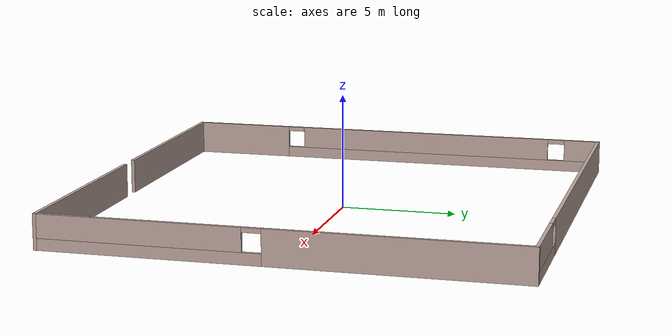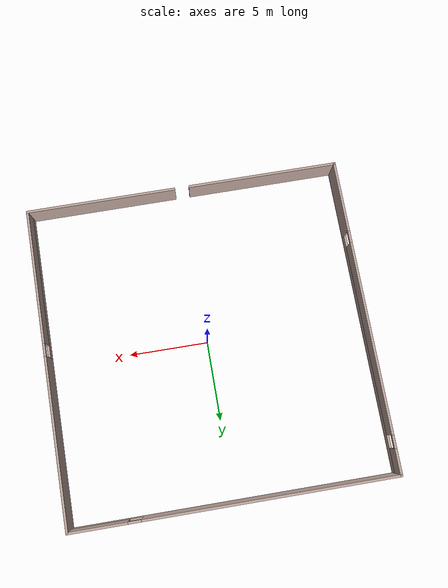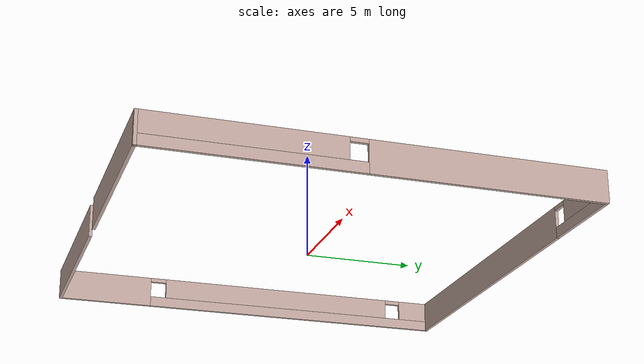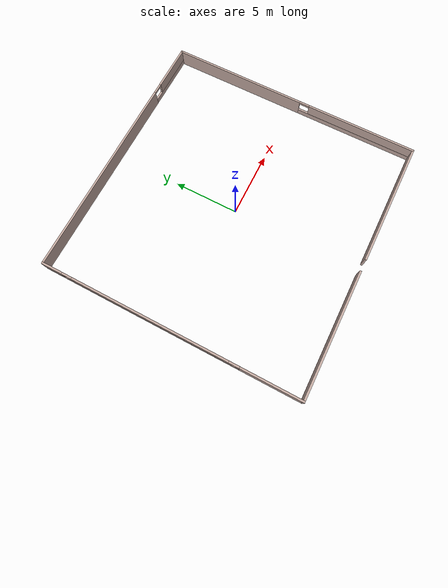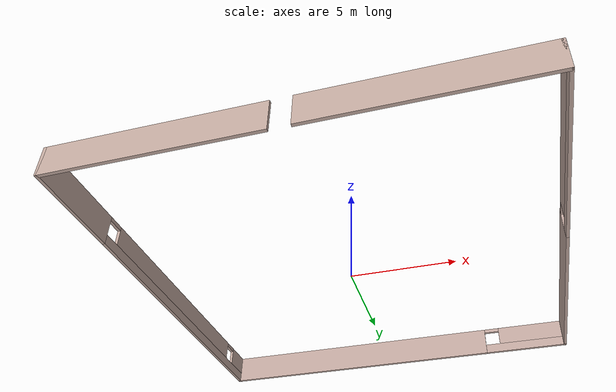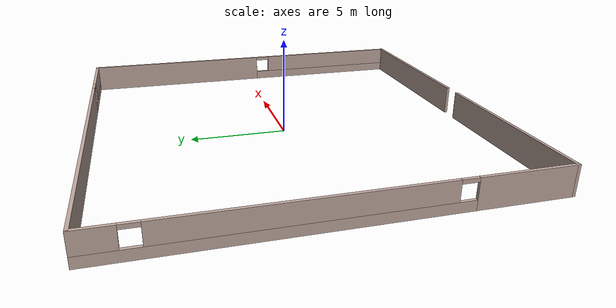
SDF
<?xml version="1.0"?>
<sdf version='1.7'>
  <!-- Perimeter -->
    <model name='by_small_obs'>
      <link name='wall_left'>
        <pose>-10 0 0 0 0 1.5708</pose>
        <visual name='wall_left_Visual_0'>
          <pose>-7.7375 0 0.75 0 0 0</pose>
          <geometry>
            <box>
              <size>4.675 0.15 1.5</size>
            </box>
          </geometry>
          <material>
            <script>
              <uri>file://media/materials/scripts/gazebo.material</uri>
              <name>Gazebo/Grey</name>
            </script>
            <ambient>0.761 0.663 0.627 1</ambient>
            <shader type='pixel'>
              <normal_map>__default__</normal_map>
            </shader>
            <diffuse>0.7 0.7 0.7 1</diffuse>
            <specular>0.01 0.01 0.01 1</specular>
            <emissive>0 0 0 1</emissive>
          </material>
        </visual>
        <visual name='wall_left_Visual_1'>
          <pose>2.3375 0 0.25 0 0 0</pose>
          <geometry>
            <box>
              <size>15.475 0.15 0.5</size>
            </box>
          </geometry>
          <material>
            <script>
              <uri>file://media/materials/scripts/gazebo.material</uri>
              <name>Gazebo/Grey</name>
            </script>
            <ambient>0.761 0.663 0.627 1</ambient>
            <shader type='pixel'>
              <normal_map>__default__</normal_map>
            </shader>
            <diffuse>0.7 0.7 0.7 1</diffuse>
            <specular>0.01 0.01 0.01 1</specular>
            <emissive>0 0 0 1</emissive>
          </material>
        </visual>
        <visual name='wall_left_Visual_2'>
          <pose>1.5 0 1 0 0 0</pose>
          <geometry>
            <box>
              <size>12.2 0.15 1</size>
            </box>
          </geometry>
          <material>
            <script>
              <uri>file://media/materials/scripts/gazebo.material</uri>
              <name>Gazebo/Grey</name>
            </script>
            <ambient>0.761 0.663 0.627 1</ambient>
            <shader type='pixel'>
              <normal_map>__default__</normal_map>
            </shader>
            <diffuse>0.7 0.7 0.7 1</diffuse>
            <specular>0.01 0.01 0.01 1</specular>
            <emissive>0 0 0 1</emissive>
          </material>
        </visual>
        <visual name='wall_left_Visual_3'>
          <pose>9.2375 0 1 0 0 0</pose>
          <geometry>
            <box>
              <size>1.675 0.15 1</size>
            </box>
          </geometry>
          <material>
            <script>
              <uri>file://media/materials/scripts/gazebo.material</uri>
              <name>Gazebo/Grey</name>
            </script>
            <ambient>0.761 0.663 0.627 1</ambient>
            <shader type='pixel'>
              <normal_map>__default__</normal_map>
            </shader>
            <diffuse>0.7 0.7 0.7 1</diffuse>
            <specular>0.01 0.01 0.01 1</specular>
            <emissive>0 0 0 1</emissive>
          </material>
        </visual>
        <visual name='wall_left_Visual_4'>
          <pose>-5 0 1.4 0 0 0</pose>
          <geometry>
            <box>
              <size>0.8 0.15 0.2</size>
            </box>
          </geometry>
          <material>
            <script>
              <uri>file://media/materials/scripts/gazebo.material</uri>
              <name>Gazebo/Grey</name>
            </script>
            <ambient>0.761 0.663 0.627 1</ambient>
            <shader type='pixel'>
              <normal_map>__default__</normal_map>
            </shader>
            <diffuse>0.7 0.7 0.7 1</diffuse>
            <specular>0.01 0.01 0.01 1</specular>
            <emissive>0 0 0 1</emissive>
          </material>
        </visual>
        <visual name='wall_left_Visual_5'>
          <pose>8 0 1.4 0 0 0</pose>
          <geometry>
            <box>
              <size>0.8 0.15 0.2</size>
            </box>
          </geometry>
          <material>
            <script>
              <uri>file://media/materials/scripts/gazebo.material</uri>
              <name>Gazebo/Grey</name>
            </script>
            <ambient>0.761 0.663 0.627 1</ambient>
            <shader type='pixel'>
              <normal_map>__default__</normal_map>
            </shader>
            <diffuse>0.7 0.7 0.7 1</diffuse>
            <specular>0.01 0.01 0.01 1</specular>
            <emissive>0 0 0 1</emissive>
          </material>
        </visual>
        <collision name='wall_left_Collision_0'>
          <laser_retro>0</laser_retro>
          <max_contacts>10</max_contacts>
          <pose>-7.7375 0 0.75 0 0 0</pose>
          <geometry>
            <box>
              <size>4.675 0.15 1.5</size>
            </box>
          </geometry>
          <surface>
            <friction>
              <ode>
                <mu>1</mu>
                <mu2>1</mu2>
                <fdir1>0 0 0</fdir1>
                <slip1>0</slip1>
                <slip2>0</slip2>
              </ode>
              <torsional>
                <coefficient>1</coefficient>
                <patch_radius>0</patch_radius>
                <surface_radius>0</surface_radius>
                <use_patch_radius>1</use_patch_radius>
                <ode>
                  <slip>0</slip>
                </ode>
              </torsional>
            </friction>
            <bounce>
              <restitution_coefficient>0</restitution_coefficient>
              <threshold>1e+06</threshold>
            </bounce>
            <contact>
              <collide_without_contact>0</collide_without_contact>
              <collide_without_contact_bitmask>1</collide_without_contact_bitmask>
              <collide_bitmask>1</collide_bitmask>
              <ode>
                <soft_cfm>0</soft_cfm>
                <soft_erp>0.2</soft_erp>
                <kp>1e+13</kp>
                <kd>1</kd>
                <max_vel>0.01</max_vel>
                <min_depth>0</min_depth>
              </ode>
              <bullet>
                <split_impulse>1</split_impulse>
                <split_impulse_penetration_threshold>-0.01</split_impulse_penetration_threshold>
                <soft_cfm>0</soft_cfm>
                <soft_erp>0.2</soft_erp>
                <kp>1e+13</kp>
                <kd>1</kd>
              </bullet>
            </contact>
          </surface>
        </collision>
        <collision name='wall_left_Collision_1'>
          <laser_retro>0</laser_retro>
          <max_contacts>10</max_contacts>
          <pose>2.3375 0 0.25 0 0 0</pose>
          <geometry>
            <box>
              <size>15.475 0.15 0.5</size>
            </box>
          </geometry>
          <surface>
            <friction>
              <ode>
                <mu>1</mu>
                <mu2>1</mu2>
                <fdir1>0 0 0</fdir1>
                <slip1>0</slip1>
                <slip2>0</slip2>
              </ode>
              <torsional>
                <coefficient>1</coefficient>
                <patch_radius>0</patch_radius>
                <surface_radius>0</surface_radius>
                <use_patch_radius>1</use_patch_radius>
                <ode>
                  <slip>0</slip>
                </ode>
              </torsional>
            </friction>
            <bounce>
              <restitution_coefficient>0</restitution_coefficient>
              <threshold>1e+06</threshold>
            </bounce>
            <contact>
              <collide_without_contact>0</collide_without_contact>
              <collide_without_contact_bitmask>1</collide_without_contact_bitmask>
              <collide_bitmask>1</collide_bitmask>
              <ode>
                <soft_cfm>0</soft_cfm>
                <soft_erp>0.2</soft_erp>
                <kp>1e+13</kp>
                <kd>1</kd>
                <max_vel>0.01</max_vel>
                <min_depth>0</min_depth>
              </ode>
              <bullet>
                <split_impulse>1</split_impulse>
                <split_impulse_penetration_threshold>-0.01</split_impulse_penetration_threshold>
                <soft_cfm>0</soft_cfm>
                <soft_erp>0.2</soft_erp>
                <kp>1e+13</kp>
                <kd>1</kd>
              </bullet>
            </contact>
          </surface>
        </collision>
        <collision name='wall_left_Collision_2'>
          <laser_retro>0</laser_retro>
          <max_contacts>10</max_contacts>
          <pose>1.5 0 1 0 0 0</pose>
          <geometry>
            <box>
              <size>12.2 0.15 1</size>
            </box>
          </geometry>
          <surface>
            <friction>
              <ode>
                <mu>1</mu>
                <mu2>1</mu2>
                <fdir1>0 0 0</fdir1>
                <slip1>0</slip1>
                <slip2>0</slip2>
              </ode>
              <torsional>
                <coefficient>1</coefficient>
                <patch_radius>0</patch_radius>
                <surface_radius>0</surface_radius>
                <use_patch_radius>1</use_patch_radius>
                <ode>
                  <slip>0</slip>
                </ode>
              </torsional>
            </friction>
            <bounce>
              <restitution_coefficient>0</restitution_coefficient>
              <threshold>1e+06</threshold>
            </bounce>
            <contact>
              <collide_without_contact>0</collide_without_contact>
              <collide_without_contact_bitmask>1</collide_without_contact_bitmask>
              <collide_bitmask>1</collide_bitmask>
              <ode>
                <soft_cfm>0</soft_cfm>
                <soft_erp>0.2</soft_erp>
                <kp>1e+13</kp>
                <kd>1</kd>
                <max_vel>0.01</max_vel>
                <min_depth>0</min_depth>
              </ode>
              <bullet>
                <split_impulse>1</split_impulse>
                <split_impulse_penetration_threshold>-0.01</split_impulse_penetration_threshold>
                <soft_cfm>0</soft_cfm>
                <soft_erp>0.2</soft_erp>
                <kp>1e+13</kp>
                <kd>1</kd>
              </bullet>
            </contact>
          </surface>
        </collision>
        <collision name='wall_left_Collision_3'>
          <laser_retro>0</laser_retro>
          <max_contacts>10</max_contacts>
          <pose>9.2375 0 1 0 0 0</pose>
          <geometry>
            <box>
              <size>1.675 0.15 1</size>
            </box>
          </geometry>
          <surface>
            <friction>
              <ode>
                <mu>1</mu>
                <mu2>1</mu2>
                <fdir1>0 0 0</fdir1>
                <slip1>0</slip1>
                <slip2>0</slip2>
              </ode>
              <torsional>
                <coefficient>1</coefficient>
                <patch_radius>0</patch_radius>
                <surface_radius>0</surface_radius>
                <use_patch_radius>1</use_patch_radius>
                <ode>
                  <slip>0</slip>
                </ode>
              </torsional>
            </friction>
            <bounce>
              <restitution_coefficient>0</restitution_coefficient>
              <threshold>1e+06</threshold>
            </bounce>
            <contact>
              <collide_without_contact>0</collide_without_contact>
              <collide_without_contact_bitmask>1</collide_without_contact_bitmask>
              <collide_bitmask>1</collide_bitmask>
              <ode>
                <soft_cfm>0</soft_cfm>
                <soft_erp>0.2</soft_erp>
                <kp>1e+13</kp>
                <kd>1</kd>
                <max_vel>0.01</max_vel>
                <min_depth>0</min_depth>
              </ode>
              <bullet>
                <split_impulse>1</split_impulse>
                <split_impulse_penetration_threshold>-0.01</split_impulse_penetration_threshold>
                <soft_cfm>0</soft_cfm>
                <soft_erp>0.2</soft_erp>
                <kp>1e+13</kp>
                <kd>1</kd>
              </bullet>
            </contact>
          </surface>
        </collision>
        <collision name='wall_left_Collision_5'>
          <laser_retro>0</laser_retro>
          <max_contacts>10</max_contacts>
          <pose>8 0 1.4 0 0 0</pose>
          <geometry>
            <box>
              <size>0.8 0.15 0.2</size>
            </box>
          </geometry>
          <surface>
            <friction>
              <ode>
                <mu>1</mu>
                <mu2>1</mu2>
                <fdir1>0 0 0</fdir1>
                <slip1>0</slip1>
                <slip2>0</slip2>
              </ode>
              <torsional>
                <coefficient>1</coefficient>
                <patch_radius>0</patch_radius>
                <surface_radius>0</surface_radius>
                <use_patch_radius>1</use_patch_radius>
                <ode>
                  <slip>0</slip>
                </ode>
              </torsional>
            </friction>
            <bounce>
              <restitution_coefficient>0</restitution_coefficient>
              <threshold>1e+06</threshold>
            </bounce>
            <contact>
              <collide_without_contact>0</collide_without_contact>
              <collide_without_contact_bitmask>1</collide_without_contact_bitmask>
              <collide_bitmask>1</collide_bitmask>
              <ode>
                <soft_cfm>0</soft_cfm>
                <soft_erp>0.2</soft_erp>
                <kp>1e+13</kp>
                <kd>1</kd>
                <max_vel>0.01</max_vel>
                <min_depth>0</min_depth>
              </ode>
              <bullet>
                <split_impulse>1</split_impulse>
                <split_impulse_penetration_threshold>-0.01</split_impulse_penetration_threshold>
                <soft_cfm>0</soft_cfm>
                <soft_erp>0.2</soft_erp>
                <kp>1e+13</kp>
                <kd>1</kd>
              </bullet>
            </contact>
          </surface>
        </collision>
        <collision name='wall_left_Collision_4'>
          <laser_retro>0</laser_retro>
          <max_contacts>10</max_contacts>
          <pose>-5 0 1.4 0 0 0</pose>
          <geometry>
            <box>
              <size>0.8 0.15 0.2</size>
            </box>
          </geometry>
          <surface>
            <friction>
              <ode>
                <mu>1</mu>
                <mu2>1</mu2>
                <fdir1>0 0 0</fdir1>
                <slip1>0</slip1>
                <slip2>0</slip2>
              </ode>
              <torsional>
                <coefficient>1</coefficient>
                <patch_radius>0</patch_radius>
                <surface_radius>0</surface_radius>
                <use_patch_radius>1</use_patch_radius>
                <ode>
                  <slip>0</slip>
                </ode>
              </torsional>
            </friction>
            <bounce>
              <restitution_coefficient>0</restitution_coefficient>
              <threshold>1e+06</threshold>
            </bounce>
            <contact>
              <collide_without_contact>0</collide_without_contact>
              <collide_without_contact_bitmask>1</collide_without_contact_bitmask>
              <collide_bitmask>1</collide_bitmask>
              <ode>
                <soft_cfm>0</soft_cfm>
                <soft_erp>0.2</soft_erp>
                <kp>1e+13</kp>
                <kd>1</kd>
                <max_vel>0.01</max_vel>
                <min_depth>0</min_depth>
              </ode>
              <bullet>
                <split_impulse>1</split_impulse>
                <split_impulse_penetration_threshold>-0.01</split_impulse_penetration_threshold>
                <soft_cfm>0</soft_cfm>
                <soft_erp>0.2</soft_erp>
                <kp>1e+13</kp>
                <kd>1</kd>
              </bullet>
            </contact>
          </surface>
        </collision>
      </link>
      <link name='wall_front'>
        <pose>0 10 0 0 0 0</pose>
        <self_collide>0</self_collide>
        <enable_wind>0</enable_wind>
        <kinematic>0</kinematic>
        <visual name='wall_front_Visual_0'>
          <pose>-2.2375 0 0.75 0 0 0</pose>
          <geometry>
            <box>
              <size>15.675 0.15 1.5</size>
            </box>
          </geometry>
          <material>
            <script>
              <uri>file://media/materials/scripts/gazebo.material</uri>
              <name>Gazebo/Grey</name>
            </script>
            <ambient>0.760784 0.662745 0.627451 1</ambient>
            <shader type='pixel'/>
          </material>

        </visual>
        <visual name='wall_front_Visual_1'>
          <pose>7.8375 0 0.25 0 0 0</pose>
          <geometry>
            <box>
              <size>4.475 0.15 0.5</size>
            </box>
          </geometry>
          <material>
            <script>
              <uri>file://media/materials/scripts/gazebo.material</uri>
              <name>Gazebo/Grey</name>
            </script>
            <ambient>0.760784 0.662745 0.627451 1</ambient>
            <shader type='pixel'/>
          </material>

        </visual>
        <visual name='wall_front_Visual_2'>
          <pose>8.2375 0 1 0 0 0</pose>
          <geometry>
            <box>
              <size>3.675 0.15 1</size>
            </box>
          </geometry>
          <material>
            <script>
              <uri>file://media/materials/scripts/gazebo.material</uri>
              <name>Gazebo/Grey</name>
            </script>
            <ambient>0.760784 0.662745 0.627451 1</ambient>
            <shader type='pixel'/>
          </material>

        </visual>
        <visual name='wall_front_Visual_3'>
          <pose>6 0 1.4 0 0 0</pose>
          <geometry>
            <box>
              <size>0.8 0.15 0.2</size>
            </box>
          </geometry>
          <material>
            <script>
              <uri>file://media/materials/scripts/gazebo.material</uri>
              <name>Gazebo/Grey</name>
            </script>
            <ambient>0.760784 0.662745 0.627451 1</ambient>
            <shader type='pixel'/>
          </material>

        </visual>
        <collision name='wall_front_Collision_0'>
          <laser_retro>0</laser_retro>
          <max_contacts>10</max_contacts>
          <pose>-2.2375 0 0.75 0 0 0</pose>
          <geometry>
            <box>
              <size>15.675 0.15 1.5</size>
            </box>
          </geometry>
          <surface>
            <friction>
              <ode>
                <mu>1</mu>
                <mu2>1</mu2>
                <fdir1>0 0 0</fdir1>
                <slip1>0</slip1>
                <slip2>0</slip2>
              </ode>
              <torsional>
                <coefficient>1</coefficient>
                <patch_radius>0</patch_radius>
                <surface_radius>0</surface_radius>
                <use_patch_radius>1</use_patch_radius>
                <ode>
                  <slip>0</slip>
                </ode>
              </torsional>
            </friction>
            <bounce>
              <restitution_coefficient>0</restitution_coefficient>
              <threshold>1e+06</threshold>
            </bounce>
            <contact>
              <collide_without_contact>0</collide_without_contact>
              <collide_without_contact_bitmask>1</collide_without_contact_bitmask>
              <collide_bitmask>1</collide_bitmask>
              <ode>
                <soft_cfm>0</soft_cfm>
                <soft_erp>0.2</soft_erp>
                <kp>1e+13</kp>
                <kd>1</kd>
                <max_vel>0.01</max_vel>
                <min_depth>0</min_depth>
              </ode>
              <bullet>
                <split_impulse>1</split_impulse>
                <split_impulse_penetration_threshold>-0.01</split_impulse_penetration_threshold>
                <soft_cfm>0</soft_cfm>
                <soft_erp>0.2</soft_erp>
                <kp>1e+13</kp>
                <kd>1</kd>
              </bullet>
            </contact>
          </surface>
        </collision>
        <collision name='wall_front_Collision_1'>
          <laser_retro>0</laser_retro>
          <max_contacts>10</max_contacts>
          <pose>7.8375 0 0.25 0 0 0</pose>
          <geometry>
            <box>
              <size>4.475 0.15 0.5</size>
            </box>
          </geometry>
          <surface>
            <friction>
              <ode>
                <mu>1</mu>
                <mu2>1</mu2>
                <fdir1>0 0 0</fdir1>
                <slip1>0</slip1>
                <slip2>0</slip2>
              </ode>
              <torsional>
                <coefficient>1</coefficient>
                <patch_radius>0</patch_radius>
                <surface_radius>0</surface_radius>
                <use_patch_radius>1</use_patch_radius>
                <ode>
                  <slip>0</slip>
                </ode>
              </torsional>
            </friction>
            <bounce>
              <restitution_coefficient>0</restitution_coefficient>
              <threshold>1e+06</threshold>
            </bounce>
            <contact>
              <collide_without_contact>0</collide_without_contact>
              <collide_without_contact_bitmask>1</collide_without_contact_bitmask>
              <collide_bitmask>1</collide_bitmask>
              <ode>
                <soft_cfm>0</soft_cfm>
                <soft_erp>0.2</soft_erp>
                <kp>1e+13</kp>
                <kd>1</kd>
                <max_vel>0.01</max_vel>
                <min_depth>0</min_depth>
              </ode>
              <bullet>
                <split_impulse>1</split_impulse>
                <split_impulse_penetration_threshold>-0.01</split_impulse_penetration_threshold>
                <soft_cfm>0</soft_cfm>
                <soft_erp>0.2</soft_erp>
                <kp>1e+13</kp>
                <kd>1</kd>
              </bullet>
            </contact>
          </surface>
        </collision>
        <collision name='wall_front_Collision_2'>
          <laser_retro>0</laser_retro>
          <max_contacts>10</max_contacts>
          <pose>8.2375 0 1 0 0 0</pose>
          <geometry>
            <box>
              <size>3.675 0.15 1</size>
            </box>
          </geometry>
          <surface>
            <friction>
              <ode>
                <mu>1</mu>
                <mu2>1</mu2>
                <fdir1>0 0 0</fdir1>
                <slip1>0</slip1>
                <slip2>0</slip2>
              </ode>
              <torsional>
                <coefficient>1</coefficient>
                <patch_radius>0</patch_radius>
                <surface_radius>0</surface_radius>
                <use_patch_radius>1</use_patch_radius>
                <ode>
                  <slip>0</slip>
                </ode>
              </torsional>
            </friction>
            <bounce>
              <restitution_coefficient>0</restitution_coefficient>
              <threshold>1e+06</threshold>
            </bounce>
            <contact>
              <collide_without_contact>0</collide_without_contact>
              <collide_without_contact_bitmask>1</collide_without_contact_bitmask>
              <collide_bitmask>1</collide_bitmask>
              <ode>
                <soft_cfm>0</soft_cfm>
                <soft_erp>0.2</soft_erp>
                <kp>1e+13</kp>
                <kd>1</kd>
                <max_vel>0.01</max_vel>
                <min_depth>0</min_depth>
              </ode>
              <bullet>
                <split_impulse>1</split_impulse>
                <split_impulse_penetration_threshold>-0.01</split_impulse_penetration_threshold>
                <soft_cfm>0</soft_cfm>
                <soft_erp>0.2</soft_erp>
                <kp>1e+13</kp>
                <kd>1</kd>
              </bullet>
            </contact>
          </surface>
        </collision>
        <collision name='wall_front_Collision_3'>
          <laser_retro>0</laser_retro>
          <max_contacts>10</max_contacts>
          <pose>6 0 1.4 0 0 0</pose>
          <geometry>
            <box>
              <size>0.8 0.15 0.2</size>
            </box>
          </geometry>
          <surface>
            <friction>
              <ode>
                <mu>1</mu>
                <mu2>1</mu2>
                <fdir1>0 0 0</fdir1>
                <slip1>0</slip1>
                <slip2>0</slip2>
              </ode>
              <torsional>
                <coefficient>1</coefficient>
                <patch_radius>0</patch_radius>
                <surface_radius>0</surface_radius>
                <use_patch_radius>1</use_patch_radius>
                <ode>
                  <slip>0</slip>
                </ode>
              </torsional>
            </friction>
            <bounce>
              <restitution_coefficient>0</restitution_coefficient>
              <threshold>1e+06</threshold>
            </bounce>
            <contact>
              <collide_without_contact>0</collide_without_contact>
              <collide_without_contact_bitmask>1</collide_without_contact_bitmask>
              <collide_bitmask>1</collide_bitmask>
              <ode>
                <soft_cfm>0</soft_cfm>
                <soft_erp>0.2</soft_erp>
                <kp>1e+13</kp>
                <kd>1</kd>
                <max_vel>0.01</max_vel>
                <min_depth>0</min_depth>
              </ode>
              <bullet>
                <split_impulse>1</split_impulse>
                <split_impulse_penetration_threshold>-0.01</split_impulse_penetration_threshold>
                <soft_cfm>0</soft_cfm>
                <soft_erp>0.2</soft_erp>
                <kp>1e+13</kp>
                <kd>1</kd>
              </bullet>
            </contact>
          </surface>
        </collision>
      </link>
      <link name='wall_right'>
        <pose>10 0 0 0 0 -1.5708</pose>
        <self_collide>0</self_collide>
        <enable_wind>0</enable_wind>
        <kinematic>0</kinematic>
        <visual name='wall_right_Visual_0'>
          <pose>-4.7375 0 0.75 0 0 0</pose>
          <geometry>
            <box>
              <size>10.675 0.15 1.5</size>
            </box>
          </geometry>
          <material>
            <script>
              <uri>file://media/materials/scripts/gazebo.material</uri>
              <name>Gazebo/Grey</name>
            </script>
            <ambient>0.760784 0.662745 0.627451 1</ambient>
            <shader type='pixel'/>
          </material>

        </visual>
        <visual name='wall_right_Visual_1'>
          <pose>5.3375 0 0.25 0 0 0</pose>
          <geometry>
            <box>
              <size>9.475 0.15 0.5</size>
            </box>
          </geometry>
          <material>
            <script>
              <uri>file://media/materials/scripts/gazebo.material</uri>
              <name>Gazebo/Grey</name>
            </script>
            <ambient>0.760784 0.662745 0.627451 1</ambient>
            <shader type='pixel'/>
          </material>

        </visual>
        <visual name='wall_right_Visual_2'>
          <pose>5.7375 0 1 0 0 0</pose>
          <geometry>
            <box>
              <size>8.675 0.15 1</size>
            </box>
          </geometry>
          <material>
            <script>
              <uri>file://media/materials/scripts/gazebo.material</uri>
              <name>Gazebo/Grey</name>
            </script>
            <ambient>0.760784 0.662745 0.627451 1</ambient>
            <shader type='pixel'/>
          </material>

        </visual>
        <visual name='wall_right_Visual_3'>
          <pose>1 0 1.4 0 0 0</pose>
          <geometry>
            <box>
              <size>0.8 0.15 0.2</size>
            </box>
          </geometry>
          <material>
            <script>
              <uri>file://media/materials/scripts/gazebo.material</uri>
              <name>Gazebo/Grey</name>
            </script>
            <ambient>0.760784 0.662745 0.627451 1</ambient>
            <shader type='pixel'/>
          </material>

        </visual>
        <collision name='wall_right_Collision_0'>
          <laser_retro>0</laser_retro>
          <max_contacts>10</max_contacts>
          <pose>-4.7375 0 0.75 0 0 0</pose>
          <geometry>
            <box>
              <size>10.675 0.15 1.5</size>
            </box>
          </geometry>
          <surface>
            <friction>
              <ode>
                <mu>1</mu>
                <mu2>1</mu2>
                <fdir1>0 0 0</fdir1>
                <slip1>0</slip1>
                <slip2>0</slip2>
              </ode>
              <torsional>
                <coefficient>1</coefficient>
                <patch_radius>0</patch_radius>
                <surface_radius>0</surface_radius>
                <use_patch_radius>1</use_patch_radius>
                <ode>
                  <slip>0</slip>
                </ode>
              </torsional>
            </friction>
            <bounce>
              <restitution_coefficient>0</restitution_coefficient>
              <threshold>1e+06</threshold>
            </bounce>
            <contact>
              <collide_without_contact>0</collide_without_contact>
              <collide_without_contact_bitmask>1</collide_without_contact_bitmask>
              <collide_bitmask>1</collide_bitmask>
              <ode>
                <soft_cfm>0</soft_cfm>
                <soft_erp>0.2</soft_erp>
                <kp>1e+13</kp>
                <kd>1</kd>
                <max_vel>0.01</max_vel>
                <min_depth>0</min_depth>
              </ode>
              <bullet>
                <split_impulse>1</split_impulse>
                <split_impulse_penetration_threshold>-0.01</split_impulse_penetration_threshold>
                <soft_cfm>0</soft_cfm>
                <soft_erp>0.2</soft_erp>
                <kp>1e+13</kp>
                <kd>1</kd>
              </bullet>
            </contact>
          </surface>
        </collision>
        <collision name='wall_right_Collision_2'>
          <laser_retro>0</laser_retro>
          <max_contacts>10</max_contacts>
          <pose>5.7375 0 1 0 0 0</pose>
          <geometry>
            <box>
              <size>8.675 0.15 1</size>
            </box>
          </geometry>
          <surface>
            <friction>
              <ode>
                <mu>1</mu>
                <mu2>1</mu2>
                <fdir1>0 0 0</fdir1>
                <slip1>0</slip1>
                <slip2>0</slip2>
              </ode>
              <torsional>
                <coefficient>1</coefficient>
                <patch_radius>0</patch_radius>
                <surface_radius>0</surface_radius>
                <use_patch_radius>1</use_patch_radius>
                <ode>
                  <slip>0</slip>
                </ode>
              </torsional>
            </friction>
            <bounce>
              <restitution_coefficient>0</restitution_coefficient>
              <threshold>1e+06</threshold>
            </bounce>
            <contact>
              <collide_without_contact>0</collide_without_contact>
              <collide_without_contact_bitmask>1</collide_without_contact_bitmask>
              <collide_bitmask>1</collide_bitmask>
              <ode>
                <soft_cfm>0</soft_cfm>
                <soft_erp>0.2</soft_erp>
                <kp>1e+13</kp>
                <kd>1</kd>
                <max_vel>0.01</max_vel>
                <min_depth>0</min_depth>
              </ode>
              <bullet>
                <split_impulse>1</split_impulse>
                <split_impulse_penetration_threshold>-0.01</split_impulse_penetration_threshold>
                <soft_cfm>0</soft_cfm>
                <soft_erp>0.2</soft_erp>
                <kp>1e+13</kp>
                <kd>1</kd>
              </bullet>
            </contact>
          </surface>
        </collision>
        <collision name='wall_right_Collision_1'>
          <laser_retro>0</laser_retro>
          <max_contacts>10</max_contacts>
          <pose>5.3375 0 0.25 0 0 0</pose>
          <geometry>
            <box>
              <size>9.475 0.15 0.5</size>
            </box>
          </geometry>
          <surface>
            <friction>
              <ode>
                <mu>1</mu>
                <mu2>1</mu2>
                <fdir1>0 0 0</fdir1>
                <slip1>0</slip1>
                <slip2>0</slip2>
              </ode>
              <torsional>
                <coefficient>1</coefficient>
                <patch_radius>0</patch_radius>
                <surface_radius>0</surface_radius>
                <use_patch_radius>1</use_patch_radius>
                <ode>
                  <slip>0</slip>
                </ode>
              </torsional>
            </friction>
            <bounce>
              <restitution_coefficient>0</restitution_coefficient>
              <threshold>1e+06</threshold>
            </bounce>
            <contact>
              <collide_without_contact>0</collide_without_contact>
              <collide_without_contact_bitmask>1</collide_without_contact_bitmask>
              <collide_bitmask>1</collide_bitmask>
              <ode>
                <soft_cfm>0</soft_cfm>
                <soft_erp>0.2</soft_erp>
                <kp>1e+13</kp>
                <kd>1</kd>
                <max_vel>0.01</max_vel>
                <min_depth>0</min_depth>
              </ode>
              <bullet>
                <split_impulse>1</split_impulse>
                <split_impulse_penetration_threshold>-0.01</split_impulse_penetration_threshold>
                <soft_cfm>0</soft_cfm>
                <soft_erp>0.2</soft_erp>
                <kp>1e+13</kp>
                <kd>1</kd>
              </bullet>
            </contact>
          </surface>
        </collision>
        <collision name='wall_right_Collision_3'>
          <laser_retro>0</laser_retro>
          <max_contacts>10</max_contacts>
          <pose>1 0 1.4 0 0 0</pose>
          <geometry>
            <box>
              <size>0.8 0.15 0.2</size>
            </box>
          </geometry>
          <surface>
            <friction>
              <ode>
                <mu>1</mu>
                <mu2>1</mu2>
                <fdir1>0 0 0</fdir1>
                <slip1>0</slip1>
                <slip2>0</slip2>
              </ode>
              <torsional>
                <coefficient>1</coefficient>
                <patch_radius>0</patch_radius>
                <surface_radius>0</surface_radius>
                <use_patch_radius>1</use_patch_radius>
                <ode>
                  <slip>0</slip>
                </ode>
              </torsional>
            </friction>
            <bounce>
              <restitution_coefficient>0</restitution_coefficient>
              <threshold>1e+06</threshold>
            </bounce>
            <contact>
              <collide_without_contact>0</collide_without_contact>
              <collide_without_contact_bitmask>1</collide_without_contact_bitmask>
              <collide_bitmask>1</collide_bitmask>
              <ode>
                <soft_cfm>0</soft_cfm>
                <soft_erp>0.2</soft_erp>
                <kp>1e+13</kp>
                <kd>1</kd>
                <max_vel>0.01</max_vel>
                <min_depth>0</min_depth>
              </ode>
              <bullet>
                <split_impulse>1</split_impulse>
                <split_impulse_penetration_threshold>-0.01</split_impulse_penetration_threshold>
                <soft_cfm>0</soft_cfm>
                <soft_erp>0.2</soft_erp>
                <kp>1e+13</kp>
                <kd>1</kd>
              </bullet>
            </contact>
          </surface>
        </collision>
      </link>
      <link name='wall_back'>
        <pose>0 -10 0 0 0 0</pose>
        <self_collide>0</self_collide>
        <enable_wind>0</enable_wind>
        <kinematic>0</kinematic>
        <gravity>1</gravity>
        <inertial>
          <mass>1</mass>
          <pose>0 0 0 0 0 0</pose>
          <inertia>
            <ixx>1</ixx>
            <ixy>0</ixy>
            <ixz>0</ixz>
            <iyy>1</iyy>
            <iyz>0</iyz>
            <izz>1</izz>
          </inertia>
        </inertial>
        <visual name='wall_back_Visual_0'>
          <pose>-5.2625 0 0.75 0 0 0</pose>
          <geometry>
            <box>
              <size>9.625 0.15 1.5</size>
            </box>
          </geometry>
          <material>
            <script>
              <uri>file://media/materials/scripts/gazebo.material</uri>
              <name>Gazebo/Grey</name>
            </script>
            <ambient>0.761 0.663 0.627 1</ambient>
            <shader type='pixel'>
              <normal_map>__default__</normal_map>
            </shader>
          </material>

        </visual>
        <visual name='wall_back_Visual_1'>
          <pose>5.2625 0 0.75 0 0 0</pose>
          <geometry>
            <box>
              <size>9.625 0.15 1.5</size>
            </box>
          </geometry>
          <material>
            <script>
              <uri>file://media/materials/scripts/gazebo.material</uri>
              <name>Gazebo/Grey</name>
            </script>
            <ambient>0.761 0.663 0.627 1</ambient>
            <shader type='pixel'>
              <normal_map>__default__</normal_map>
            </shader>
          </material>

        </visual>
        <collision name='wall_back_Collision_0'>
          <laser_retro>0</laser_retro>
          <max_contacts>10</max_contacts>
          <pose>-5.2625 0 0.75 0 0 0</pose>
          <geometry>
            <box>
              <size>9.625 0.15 1.5</size>
            </box>
          </geometry>
          <surface>
            <friction>
              <ode>
                <mu>1</mu>
                <mu2>1</mu2>
                <fdir1>0 0 0</fdir1>
                <slip1>0</slip1>
                <slip2>0</slip2>
              </ode>
              <torsional>
                <coefficient>1</coefficient>
                <patch_radius>0</patch_radius>
                <surface_radius>0</surface_radius>
                <use_patch_radius>1</use_patch_radius>
                <ode>
                  <slip>0</slip>
                </ode>
              </torsional>
            </friction>
            <bounce>
              <restitution_coefficient>0</restitution_coefficient>
              <threshold>1e+06</threshold>
            </bounce>
            <contact>
              <collide_without_contact>0</collide_without_contact>
              <collide_without_contact_bitmask>1</collide_without_contact_bitmask>
              <collide_bitmask>1</collide_bitmask>
              <ode>
                <soft_cfm>0</soft_cfm>
                <soft_erp>0.2</soft_erp>
                <kp>1e+13</kp>
                <kd>1</kd>
                <max_vel>0.01</max_vel>
                <min_depth>0</min_depth>
              </ode>
              <bullet>
                <split_impulse>1</split_impulse>
                <split_impulse_penetration_threshold>-0.01</split_impulse_penetration_threshold>
                <soft_cfm>0</soft_cfm>
                <soft_erp>0.2</soft_erp>
                <kp>1e+13</kp>
                <kd>1</kd>
              </bullet>
            </contact>
          </surface>
        </collision>
        <collision name='wall_back_Collision_1'>
          <laser_retro>0</laser_retro>
          <max_contacts>10</max_contacts>
          <pose>5.2625 0 0.75 0 0 0</pose>
          <geometry>
            <box>
              <size>9.625 0.15 1.5</size>
            </box>
          </geometry>
          <surface>
            <friction>
              <ode>
                <mu>1</mu>
                <mu2>1</mu2>
                <fdir1>0 0 0</fdir1>
                <slip1>0</slip1>
                <slip2>0</slip2>
              </ode>
              <torsional>
                <coefficient>1</coefficient>
                <patch_radius>0</patch_radius>
                <surface_radius>0</surface_radius>
                <use_patch_radius>1</use_patch_radius>
                <ode>
                  <slip>0</slip>
                </ode>
              </torsional>
            </friction>
            <bounce>
              <restitution_coefficient>0</restitution_coefficient>
              <threshold>1e+06</threshold>
            </bounce>
            <contact>
              <collide_without_contact>0</collide_without_contact>
              <collide_without_contact_bitmask>1</collide_without_contact_bitmask>
              <collide_bitmask>1</collide_bitmask>
              <ode>
                <soft_cfm>0</soft_cfm>
                <soft_erp>0.2</soft_erp>
                <kp>1e+13</kp>
                <kd>1</kd>
                <max_vel>0.01</max_vel>
                <min_depth>0</min_depth>
              </ode>
              <bullet>
                <split_impulse>1</split_impulse>
                <split_impulse_penetration_threshold>-0.01</split_impulse_penetration_threshold>
                <soft_cfm>0</soft_cfm>
                <soft_erp>0.2</soft_erp>
                <kp>1e+13</kp>
                <kd>1</kd>
              </bullet>
            </contact>
          </surface>
        </collision>
      </link>
      <static>1</static>
      <allow_auto_disable>1</allow_auto_disable>
      <pose>0 0 0 0 0 0</pose>
    </model>
</sdf>
